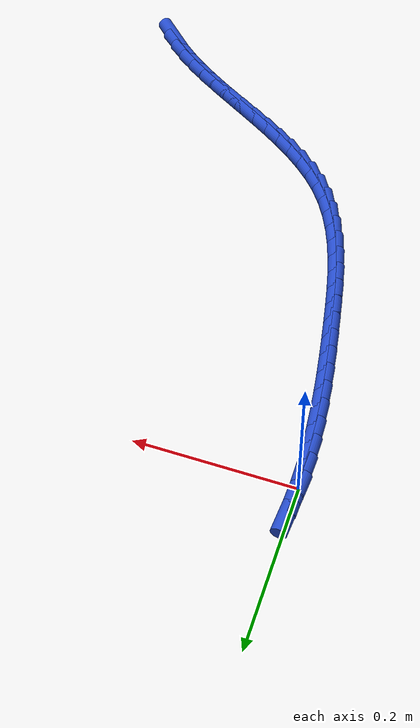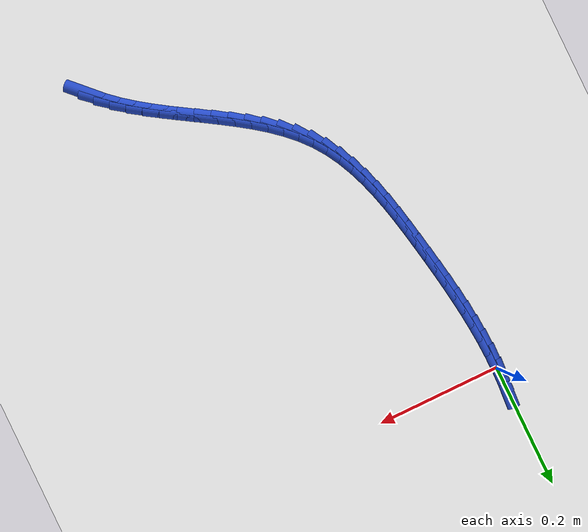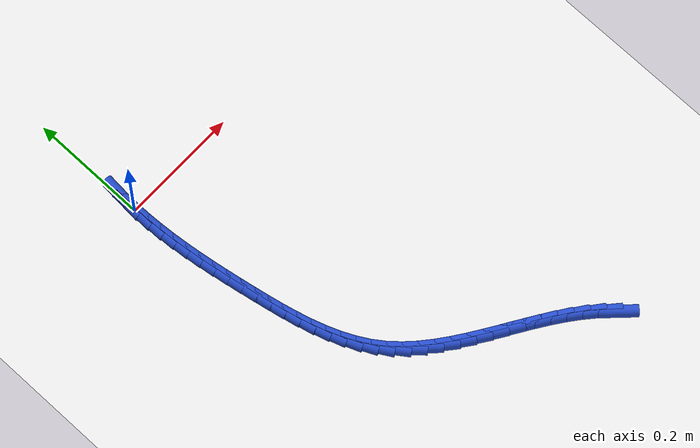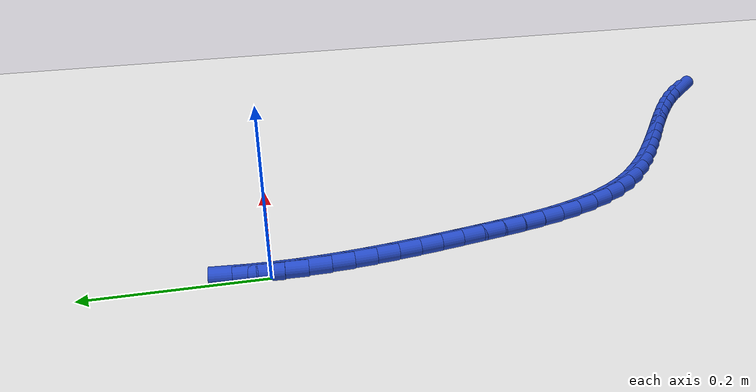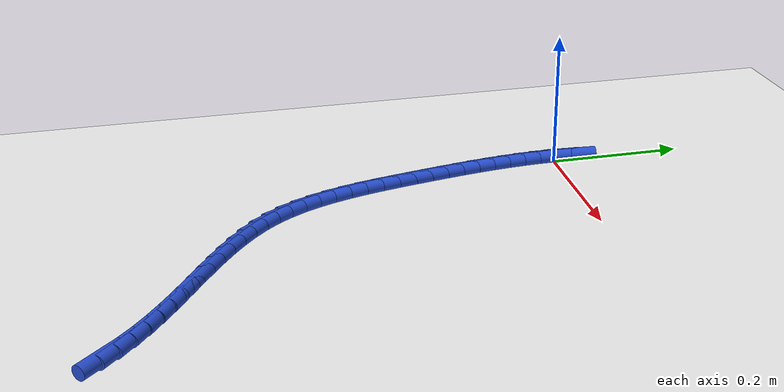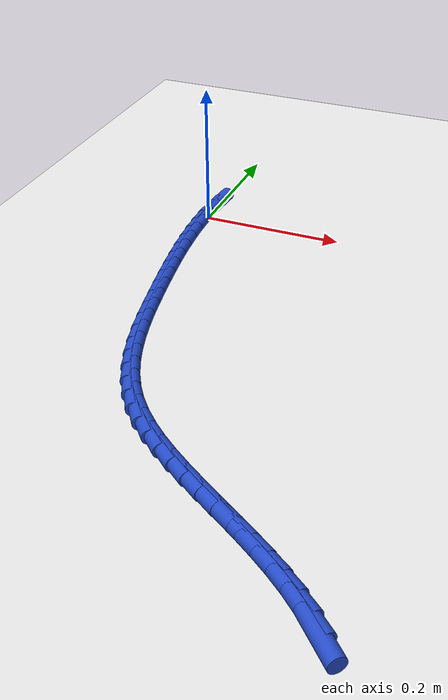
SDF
<sdf version="1.6">
 <world name="default">
  <model name="ground_plane">
   <static>1</static>
   <link name="link">
    <collision name="collision">
     <geometry><plane><normal>0 0 1</normal><size>100 100</size></plane></geometry>
     <surface><friction><ode><mu>100</mu><mu2>50</mu2></ode></friction></surface>
    </collision>
    <visual name="visual">
     <cast_shadows>0</cast_shadows>
     <geometry><plane><normal>0 0 1</normal><size>100 100</size></plane></geometry>
     <material>
      <script><uri>file://media/materials/scripts/gazebo.material</uri><name>Gazebo/WhiteGlow</name></script>
     </material>
    </visual>
   </link>
  </model>
  <model name="line">
   <link name="link_0">
    <pose>-5.204170427930421e-18 0.0 0.01 0 1.57 1.5416617803923067</pose>
    <collision name="collision">
     <geometry><cylinder><radius>0.01</radius><length>0.08</length></cylinder></geometry>
    </collision>
    <visual name="visual">
     <material>
      <script><name>Gazebo/Blue</name><uri>file://media/materials/scripts/gazebo.material</uri></script>
     </material>
     <geometry><cylinder><radius>0.01</radius><length>0.08</length></cylinder></geometry>
    </visual>
   </link>
   <link name="link_248">
    <pose>0.38488226374799517 -0.6553389260946733 0.01 0 1.57 -0.793031891891186</pose>
    <collision name="collision">
     <geometry><cylinder><radius>0.01</radius><length>0.08</length></cylinder></geometry>
    </collision>
    <visual name="visual">
     <material>
      <script><name>Gazebo/Blue</name><uri>file://media/materials/scripts/gazebo.material</uri></script>
     </material>
     <geometry><cylinder><radius>0.01</radius><length>0.08</length></cylinder></geometry>
    </visual>
   </link>
   <link name="link_249">
    <pose>0.3677949276554357 -0.6379886978796087 0.01 0 1.57 -0.7180325320321607</pose>
    <collision name="collision">
     <geometry><cylinder><radius>0.01</radius><length>0.08</length></cylinder></geometry>
    </collision>
    <visual name="visual">
     <material>
      <script><name>Gazebo/Blue</name><uri>file://media/materials/scripts/gazebo.material</uri></script>
     </material>
     <geometry><cylinder><radius>0.01</radius><length>0.08</length></cylinder></geometry>
    </visual>
   </link>
   <link name="link_250">
    <pose>0.3491461142931039 -0.6216972259481129 0.01 0 1.57 -0.6584727127185989</pose>
    <collision name="collision">
     <geometry><cylinder><radius>0.01</radius><length>0.08</length></cylinder></geometry>
    </collision>
    <visual name="visual">
     <material>
      <script><name>Gazebo/Blue</name><uri>file://media/materials/scripts/gazebo.material</uri></script>
     </material>
     <geometry><cylinder><radius>0.01</radius><length>0.08</length></cylinder></geometry>
    </visual>
   </link>
   <link name="link_251">
    <pose>0.32920843877243333 -0.6062722324091956 0.01 0 1.57 -0.6133809653999511</pose>
    <collision name="collision">
     <geometry><cylinder><radius>0.01</radius><length>0.08</length></cylinder></geometry>
    </collision>
    <visual name="visual">
     <material>
      <script><name>Gazebo/Blue</name><uri>file://media/materials/scripts/gazebo.material</uri></script>
     </material>
     <geometry><cylinder><radius>0.01</radius><length>0.08</length></cylinder></geometry>
    </visual>
   </link>
   <link name="link_252">
    <pose>0.3082545162048569 -0.5915214393718655 0.01 0 1.57 -0.5817173591284531</pose>
    <collision name="collision">
     <geometry><cylinder><radius>0.01</radius><length>0.08</length></cylinder></geometry>
    </collision>
    <visual name="visual">
     <material>
      <script><name>Gazebo/Blue</name><uri>file://media/materials/scripts/gazebo.material</uri></script>
     </material>
     <geometry><cylinder><radius>0.01</radius><length>0.08</length></cylinder></geometry>
    </visual>
   </link>
   <link name="link_253">
    <pose>0.28655696170180944 -0.5772525689451327 0.01 0 1.57 -0.5626072626075218</pose>
    <collision name="collision">
     <geometry><cylinder><radius>0.01</radius><length>0.08</length></cylinder></geometry>
    </collision>
    <visual name="visual">
     <material>
      <script><name>Gazebo/Blue</name><uri>file://media/materials/scripts/gazebo.material</uri></script>
     </material>
     <geometry><cylinder><radius>0.01</radius><length>0.08</length></cylinder></geometry>
    </visual>
   </link>
   <link name="link_254">
    <pose>0.264388390374724 -0.5632733432380062 0.01 0 1.57 -0.5554585580968352</pose>
    <collision name="collision">
     <geometry><cylinder><radius>0.01</radius><length>0.08</length></cylinder></geometry>
    </collision>
    <visual name="visual">
     <material>
      <script><name>Gazebo/Blue</name><uri>file://media/materials/scripts/gazebo.material</uri></script>
     </material>
     <geometry><cylinder><radius>0.01</radius><length>0.08</length></cylinder></geometry>
    </visual>
   </link>
   <link name="link_255">
    <pose>0.24202141733503418 -0.5493914843594954 0.01 0 1.57 -0.5600107758408207</pose>
    <collision name="collision">
     <geometry><cylinder><radius>0.01</radius><length>0.08</length></cylinder></geometry>
    </collision>
    <visual name="visual">
     <material>
      <script><name>Gazebo/Blue</name><uri>file://media/materials/scripts/gazebo.material</uri></script>
     </material>
     <geometry><cylinder><radius>0.01</radius><length>0.08</length></cylinder></geometry>
    </visual>
   </link>
   <link name="link_256">
    <pose>0.21972865769417357 -0.5354147144186095 0.01 0 1.57 -0.5763465078335882</pose>
    <collision name="collision">
     <geometry><cylinder><radius>0.01</radius><length>0.08</length></cylinder></geometry>
    </collision>
    <visual name="visual">
     <material>
      <script><name>Gazebo/Blue</name><uri>file://media/materials/scripts/gazebo.material</uri></script>
     </material>
     <geometry><cylinder><radius>0.01</radius><length>0.08</length></cylinder></geometry>
    </visual>
   </link>
   <link name="link_257">
    <pose>0.19778272656357568 -0.5211507555243581 0.01 0 1.57 -0.6048766239782085</pose>
    <collision name="collision">
     <geometry><cylinder><radius>0.01</radius><length>0.08</length></cylinder></geometry>
    </collision>
    <visual name="visual">
     <material>
      <script><name>Gazebo/Blue</name><uri>file://media/materials/scripts/gazebo.material</uri></script>
     </material>
     <geometry><cylinder><radius>0.01</radius><length>0.08</length></cylinder></geometry>
    </visual>
   </link>
   <link name="link_258">
    <pose>0.17645623905467409 -0.50640732978575 0.01 0 1.57 -0.6462936203528417</pose>
    <collision name="collision">
     <geometry><cylinder><radius>0.01</radius><length>0.08</length></cylinder></geometry>
    </collision>
    <visual name="visual">
     <material>
      <script><name>Gazebo/Blue</name><uri>file://media/materials/scripts/gazebo.material</uri></script>
     </material>
     <geometry><cylinder><radius>0.01</radius><length>0.08</length></cylinder></geometry>
    </visual>
   </link>
   <link name="link_259">
    <pose>0.15602181027890247 -0.4909921593117949 0.01 0 1.57 -0.7014705925474037</pose>
    <collision name="collision">
     <geometry><cylinder><radius>0.01</radius><length>0.08</length></cylinder></geometry>
    </collision>
    <visual name="visual">
     <material>
      <script><name>Gazebo/Blue</name><uri>file://media/materials/scripts/gazebo.material</uri></script>
     </material>
     <geometry><cylinder><radius>0.01</radius><length>0.08</length></cylinder></geometry>
    </visual>
   </link>
   <link name="link_260">
    <pose>0.1367520553476944 -0.47471296621150205 0.01 0 1.57 -0.7712677081160518</pose>
    <collision name="collision">
     <geometry><cylinder><radius>0.01</radius><length>0.08</length></cylinder></geometry>
    </collision>
    <visual name="visual">
     <material>
      <script><name>Gazebo/Blue</name><uri>file://media/materials/scripts/gazebo.material</uri></script>
     </material>
     <geometry><cylinder><radius>0.01</radius><length>0.08</length></cylinder></geometry>
    </visual>
   </link>
   <link name="link_261">
    <pose>0.11891958937248294 -0.45737747259388023 0.01 0 1.57 -0.8562029353304893</pose>
    <collision name="collision">
     <geometry><cylinder><radius>0.01</radius><length>0.08</length></cylinder></geometry>
    </collision>
    <visual name="visual">
     <material>
      <script><name>Gazebo/Blue</name><uri>file://media/materials/scripts/gazebo.material</uri></script>
     </material>
     <geometry><cylinder><radius>0.01</radius><length>0.08</length></cylinder></geometry>
    </visual>
   </link>
   <link name="link_262">
    <pose>0.10279702746470278 -0.4387934005679399 0.01 0 1.57 -0.9542321102731339</pose>
    <collision name="collision">
     <geometry><cylinder><radius>0.01</radius><length>0.08</length></cylinder></geometry>
    </collision>
    <visual name="visual">
     <material>
      <script><name>Gazebo/Blue</name><uri>file://media/materials/scripts/gazebo.material</uri></script>
     </material>
     <geometry><cylinder><radius>0.01</radius><length>0.08</length></cylinder></geometry>
    </visual>
   </link>
   <link name="link_263">
    <pose>0.088623303403033 -0.4187947717149473 0.01 0 1.57 -1.048749397893753</pose>
    <collision name="collision">
     <geometry><cylinder><radius>0.01</radius><length>0.08</length></cylinder></geometry>
    </collision>
    <visual name="visual">
     <material>
      <script><name>Gazebo/Blue</name><uri>file://media/materials/scripts/gazebo.material</uri></script>
     </material>
     <geometry><cylinder><radius>0.01</radius><length>0.08</length></cylinder></geometry>
    </visual>
   </link>
   <link name="link_264">
    <pose>0.07634189570686288 -0.3974463086235133 0.01 0 1.57 -1.1308123411619484</pose>
    <collision name="collision">
     <geometry><cylinder><radius>0.01</radius><length>0.08</length></cylinder></geometry>
    </collision>
    <visual name="visual">
     <material>
      <script><name>Gazebo/Blue</name><uri>file://media/materials/scripts/gazebo.material</uri></script>
     </material>
     <geometry><cylinder><radius>0.01</radius><length>0.08</length></cylinder></geometry>
    </visual>
   </link>
   <link name="link_265">
    <pose>0.06574317315031904 -0.37493228691559566 0.01 0 1.57 -1.2002639430963358</pose>
    <collision name="collision">
     <geometry><cylinder><radius>0.01</radius><length>0.08</length></cylinder></geometry>
    </collision>
    <visual name="visual">
     <material>
      <script><name>Gazebo/Blue</name><uri>file://media/materials/scripts/gazebo.material</uri></script>
     </material>
     <geometry><cylinder><radius>0.01</radius><length>0.08</length></cylinder></geometry>
    </visual>
   </link>
   <link name="link_266">
    <pose>0.056616209545912344 -0.3514379933609985 0.01 0 1.57 -1.257603127820206</pose>
    <collision name="collision">
     <geometry><cylinder><radius>0.01</radius><length>0.08</length></cylinder></geometry>
    </collision>
    <visual name="visual">
     <material>
      <script><name>Gazebo/Blue</name><uri>file://media/materials/scripts/gazebo.material</uri></script>
     </material>
     <geometry><cylinder><radius>0.01</radius><length>0.08</length></cylinder></geometry>
    </visual>
   </link>
   <link name="link_267">
    <pose>0.048750078706153714 -0.3271487147295261 0.01 0 1.57 -1.3035877700142076</pose>
    <collision name="collision">
     <geometry><cylinder><radius>0.01</radius><length>0.08</length></cylinder></geometry>
    </collision>
    <visual name="visual">
     <material>
      <script><name>Gazebo/Blue</name><uri>file://media/materials/scripts/gazebo.material</uri></script>
     </material>
     <geometry><cylinder><radius>0.01</radius><length>0.08</length></cylinder></geometry>
    </visual>
   </link>
   <link name="link_268">
    <pose>0.04193385444355407 -0.30224973779098246 0.01 0 1.57 -1.3390023425736117</pose>
    <collision name="collision">
     <geometry><cylinder><radius>0.01</radius><length>0.08</length></cylinder></geometry>
    </collision>
    <visual name="visual">
     <material>
      <script><name>Gazebo/Blue</name><uri>file://media/materials/scripts/gazebo.material</uri></script>
     </material>
     <geometry><cylinder><radius>0.01</radius><length>0.08</length></cylinder></geometry>
    </visual>
   </link>
   <link name="link_269">
    <pose>0.03595661057062434 -0.2769263493151719 0.01 0 1.57 -1.3645138012599514</pose>
    <collision name="collision">
     <geometry><cylinder><radius>0.01</radius><length>0.08</length></cylinder></geometry>
    </collision>
    <visual name="visual">
     <material>
      <script><name>Gazebo/Blue</name><uri>file://media/materials/scripts/gazebo.material</uri></script>
     </material>
     <geometry><cylinder><radius>0.01</radius><length>0.08</length></cylinder></geometry>
    </visual>
   </link>
   <link name="link_270">
    <pose>0.030607420899875268 -0.25136383607189783 0.01 0 1.57 -1.3805881893738368</pose>
    <collision name="collision">
     <geometry><cylinder><radius>0.01</radius><length>0.08</length></cylinder></geometry>
    </collision>
    <visual name="visual">
     <material>
      <script><name>Gazebo/Blue</name><uri>file://media/materials/scripts/gazebo.material</uri></script>
     </material>
     <geometry><cylinder><radius>0.01</radius><length>0.08</length></cylinder></geometry>
    </visual>
   </link>
   <link name="link_271">
    <pose>0.025675359243818113 -0.22574748483096593 0.01 0 1.57 -1.3888559868299326</pose>
    <collision name="collision">
     <geometry><cylinder><radius>0.01</radius><length>0.08</length></cylinder></geometry>
    </collision>
    <visual name="visual">
     <material>
      <script><name>Gazebo/Blue</name><uri>file://media/materials/scripts/gazebo.material</uri></script>
     </material>
     <geometry><cylinder><radius>0.01</radius><length>0.08</length></cylinder></geometry>
    </visual>
   </link>
   <link name="link_272">
    <pose>0.0209826767069419 -0.20024028615366163 0.01 0 1.57 -1.3976422659806882</pose>
    <collision name="collision">
     <geometry><cylinder><radius>0.01</radius><length>0.08</length></cylinder></geometry>
    </collision>
    <visual name="visual">
     <material>
      <script><name>Gazebo/Blue</name><uri>file://media/materials/scripts/gazebo.material</uri></script>
     </material>
     <geometry><cylinder><radius>0.01</radius><length>0.08</length></cylinder></geometry>
    </visual>
   </link>
   <link name="link_273">
    <pose>0.016546068973909242 -0.17487455758227932 0.01 0 1.57 -1.4100203887152016</pose>
    <collision name="collision">
     <geometry><cylinder><radius>0.01</radius><length>0.08</length></cylinder></geometry>
    </collision>
    <visual name="visual">
     <material>
      <script><name>Gazebo/Blue</name><uri>file://media/materials/scripts/gazebo.material</uri></script>
     </material>
     <geometry><cylinder><radius>0.01</radius><length>0.08</length></cylinder></geometry>
    </visual>
   </link>
   <link name="link_274">
    <pose>0.012452851494429196 -0.14963515790304646 0.01 0 1.57 -1.426066782718767</pose>
    <collision name="collision">
     <geometry><cylinder><radius>0.01</radius><length>0.08</length></cylinder></geometry>
    </collision>
    <visual name="visual">
     <material>
      <script><name>Gazebo/Blue</name><uri>file://media/materials/scripts/gazebo.material</uri></script>
     </material>
     <geometry><cylinder><radius>0.01</radius><length>0.08</length></cylinder></geometry>
    </visual>
   </link>
   <link name="link_275">
    <pose>0.008790439590963303 -0.12450687878448473 0.01 0 1.57 -1.4458456622673752</pose>
    <collision name="collision">
     <geometry><cylinder><radius>0.01</radius><length>0.08</length></cylinder></geometry>
    </collision>
    <visual name="visual">
     <material>
      <script><name>Gazebo/Blue</name><uri>file://media/materials/scripts/gazebo.material</uri></script>
     </material>
     <geometry><cylinder><radius>0.01</radius><length>0.08</length></cylinder></geometry>
    </visual>
   </link>
   <link name="link_276">
    <pose>0.005646248585973099 -0.0994745118951157 0.01 0 1.57 -1.4694062876921796</pose>
    <collision name="collision">
     <geometry><cylinder><radius>0.01</radius><length>0.08</length></cylinder></geometry>
    </collision>
    <visual name="visual">
     <material>
      <script><name>Gazebo/Blue</name><uri>file://media/materials/scripts/gazebo.material</uri></script>
     </material>
     <geometry><cylinder><radius>0.01</radius><length>0.08</length></cylinder></geometry>
    </visual>
   </link>
   <link name="link_277">
    <pose>0.003107693801920126 -0.07452284890346113 0.01 0 1.57 -1.4967740280543893</pose>
    <collision name="collision">
     <geometry><cylinder><radius>0.01</radius><length>0.08</length></cylinder></geometry>
    </collision>
    <visual name="visual">
     <material>
      <script><name>Gazebo/Blue</name><uri>file://media/materials/scripts/gazebo.material</uri></script>
     </material>
     <geometry><cylinder><radius>0.01</radius><length>0.08</length></cylinder></geometry>
    </visual>
   </link>
   <link name="link_278">
    <pose>0.0012621905612659207 -0.049636681478042635 0.01 0 1.57 -1.5279396115630086</pose>
    <collision name="collision">
     <geometry><cylinder><radius>0.01</radius><length>0.08</length></cylinder></geometry>
    </collision>
    <visual name="visual">
     <material>
      <script><name>Gazebo/Blue</name><uri>file://media/materials/scripts/gazebo.material</uri></script>
     </material>
     <geometry><cylinder><radius>0.01</radius><length>0.08</length></cylinder></geometry>
    </visual>
   </link>
   <link name="link_279">
    <pose>0.0001971541864720077 -0.024800801287381137 0.01 0 1.57 -1.5628469855090052</pose>
    <collision name="collision">
     <geometry><cylinder><radius>0.01</radius><length>0.08</length></cylinder></geometry>
    </collision>
    <visual name="visual">
     <material>
      <script><name>Gazebo/Blue</name><uri>file://media/materials/scripts/gazebo.material</uri></script>
     </material>
     <geometry><cylinder><radius>0.01</radius><length>0.08</length></cylinder></geometry>
    </visual>
   </link>
   <link name="link_280">
    <pose>-6.938893903907228e-18 1.1796119636642288e-16 0.01 0 1.57 1.540212046904847</pose>
    <collision name="collision">
     <geometry><cylinder><radius>0.01</radius><length>0.08</length></cylinder></geometry>
    </collision>
    <visual name="visual">
     <material>
      <script><name>Gazebo/Blue</name><uri>file://media/materials/scripts/gazebo.material</uri></script>
     </material>
     <geometry><cylinder><radius>0.01</radius><length>0.08</length></cylinder></geometry>
    </visual>
   </link>
   <link name="link_281">
    <pose>0.0007581433243113705 0.024780930715580272 0.01 0 1.57 1.498239201199287</pose>
    <collision name="collision">
     <geometry><cylinder><radius>0.01</radius><length>0.08</length></cylinder></geometry>
    </collision>
    <visual name="visual">
     <material>
      <script><name>Gazebo/Blue</name><uri>file://media/materials/scripts/gazebo.material</uri></script>
     </material>
     <geometry><cylinder><radius>0.01</radius><length>0.08</length></cylinder></geometry>
    </visual>
   </link>
  </model>
 </world>
</sdf>
